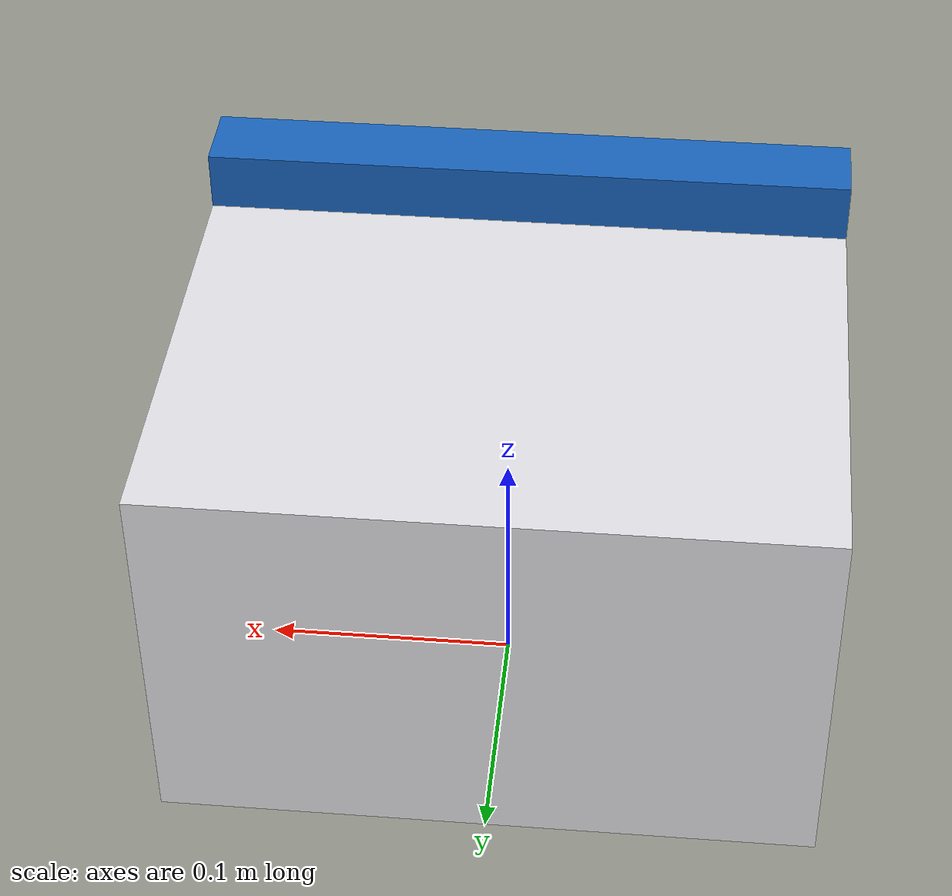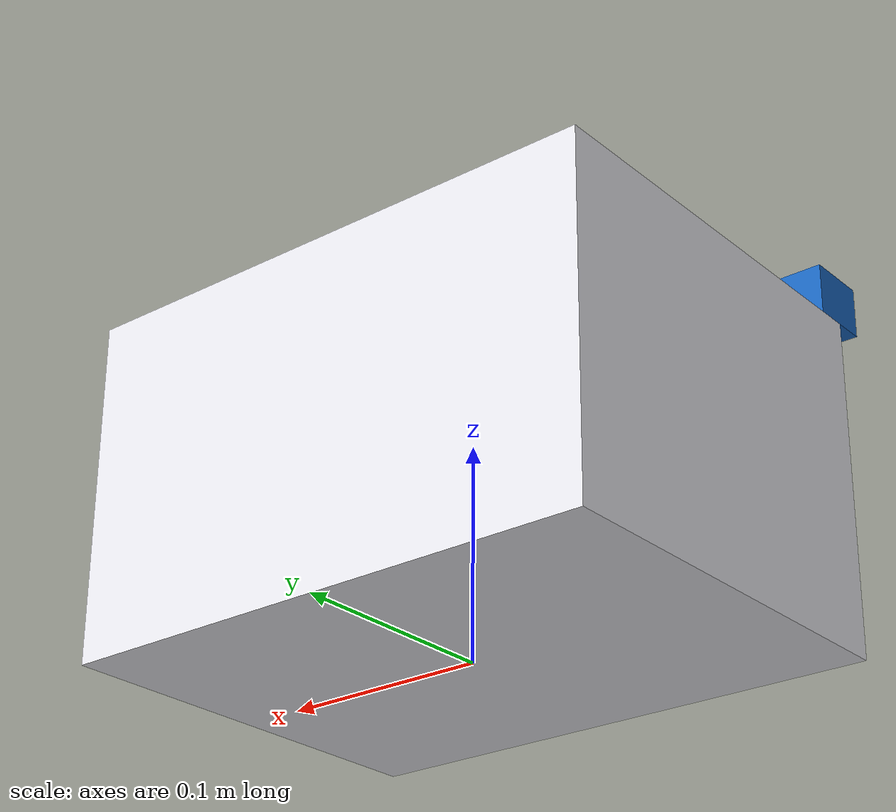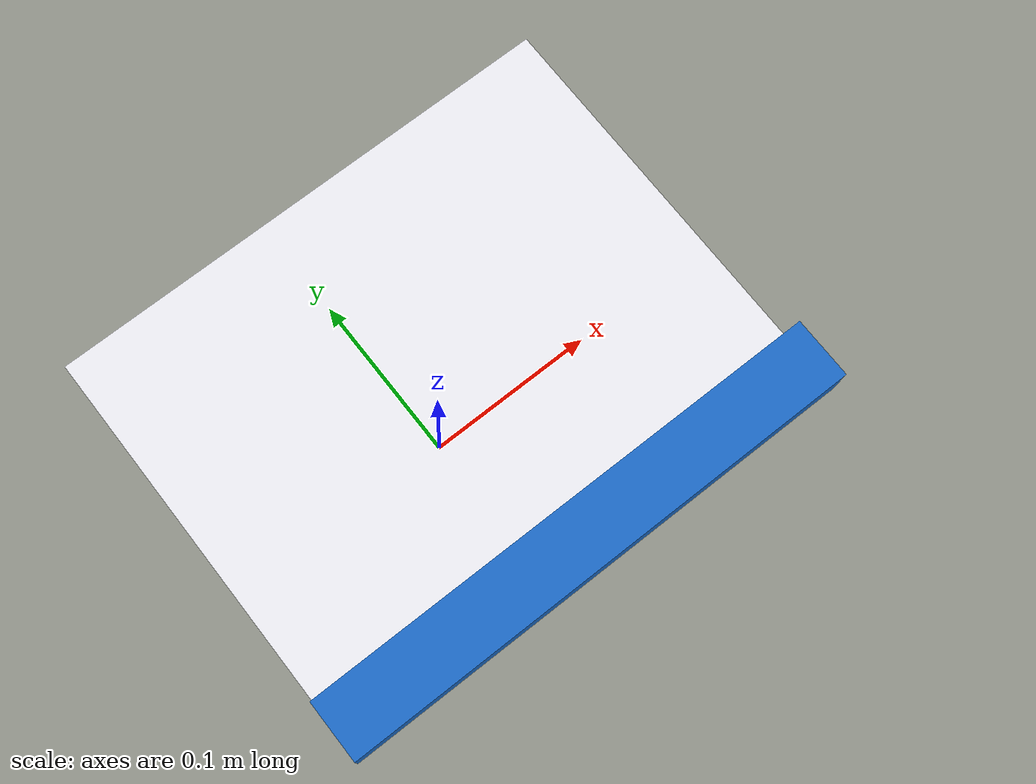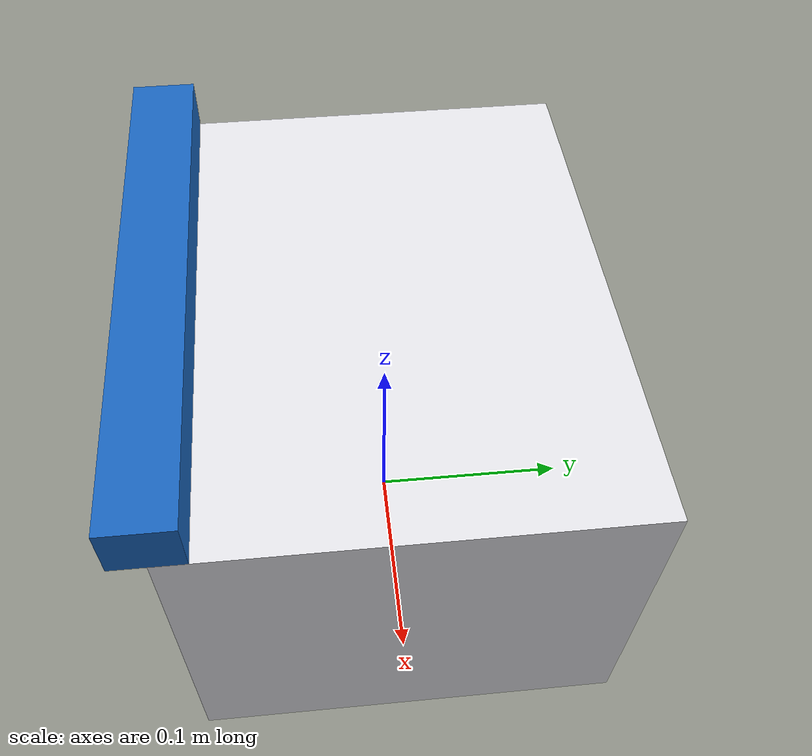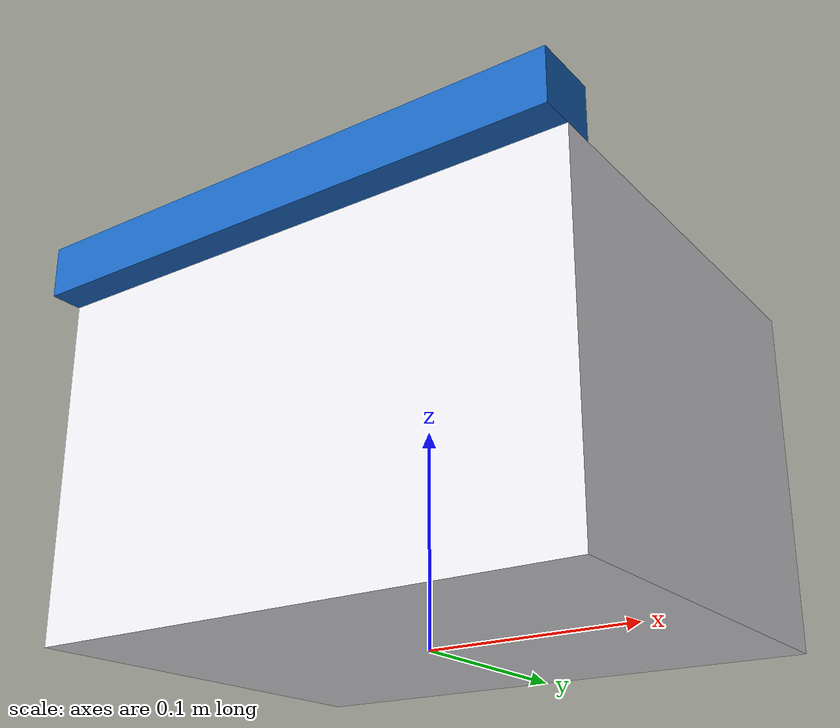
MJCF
<?xml version="1.0" encoding="utf-8"?>
<mujoco model="real_lab_helsinki_university_sequencer">
  <compiler angle="radian" autolimits="true"/>
  <default>
    <default class="body"><geom contype="1" conaffinity="1"/></default>
  </default>
  <worldbody>
    <body name="base">
      <geom type="box" size="0.13 0.1 0.08" pos="0 0 0.08" rgba="0.9 0.9 0.92 1" class="body"/>
      <body name="lid" pos="0 -0.1 0.16">
        <joint name="lid_joint" type="hinge" axis="0 1 0" range="0 1.5" damping="0.6" frictionloss="0.25"/>
  <geom type="box" size="0.13 0.015 0.012" pos="0 0 0.012" rgba="0.1 0.4 0.75 1" class="body"/>
      </body>
    </body>
  </worldbody>
</mujoco>
